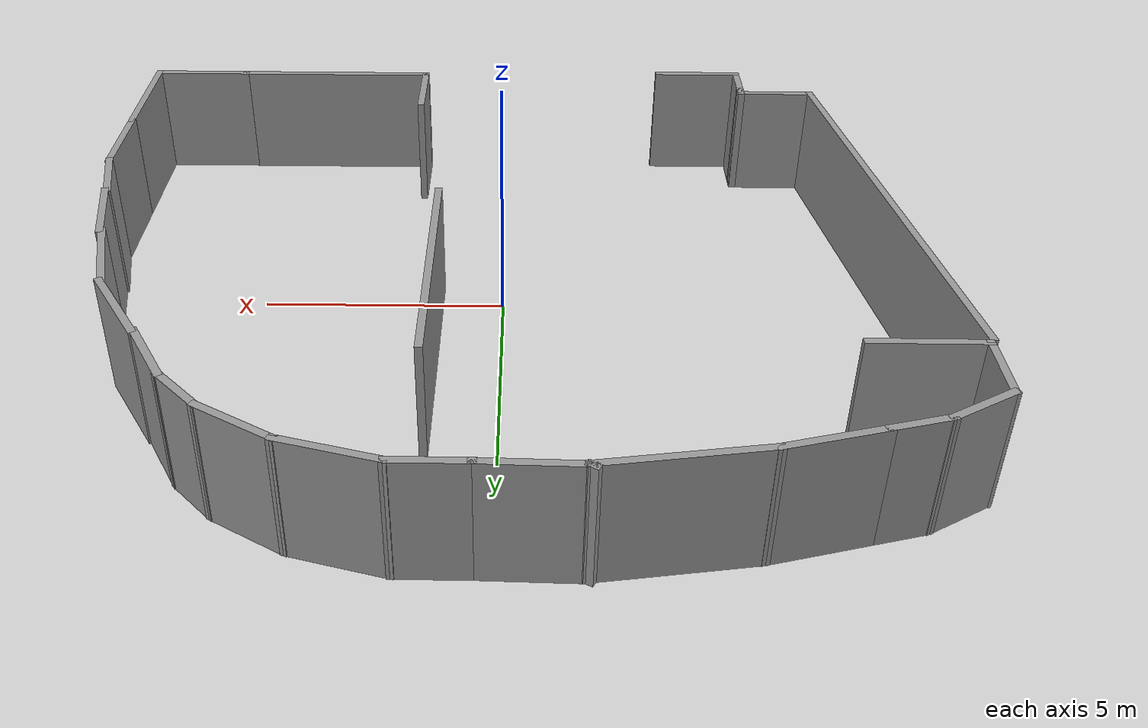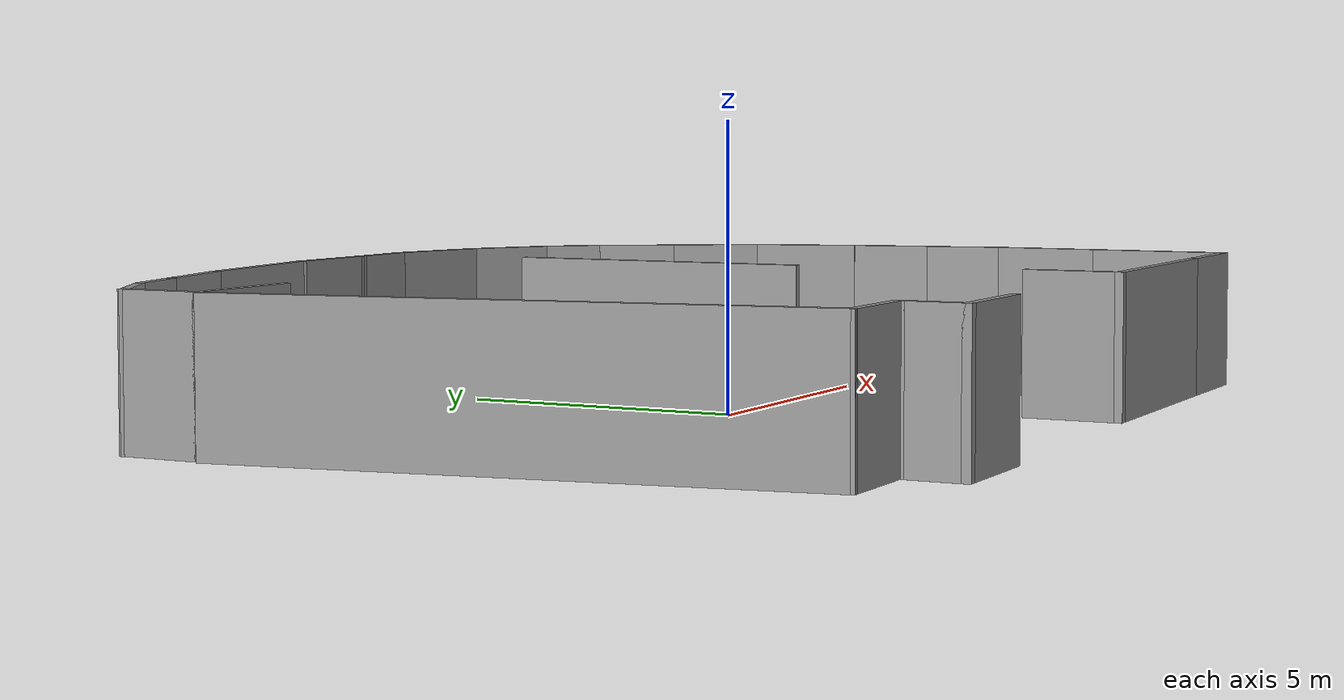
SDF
<?xml version='1.0'?>
<sdf version='1.6'>
  <model name='df'>
    <pose frame=''>-0.046206 0.709499 0 0 -0 0</pose>
    <link name='Wall_0'>
      <collision name='Wall_0_Collision'>
        <geometry>
          <box>
            <size>2 0.15 2.5</size>
          </box>
        </geometry>
        <pose frame=''>0 0 1.25 0 -0 0</pose>
      </collision>
      <visual name='Wall_0_Visual'>
        <pose frame=''>0 0 1.25 0 -0 0</pose>
        <geometry>
          <box>
            <size>2 0.15 2.5</size>
          </box>
        </geometry>
        <material>
          <script>
            <uri>file://media/materials/scripts/gazebo.material</uri>
            <name>Gazebo/Grey</name>
          </script>
          <ambient>1 1 1 1</ambient>
        </material>
        <meta>
          <layer>0</layer>
        </meta>
      </visual>
      <pose frame=''>-4.50458 -7.08787 0 0 -0 3.14159</pose>
    </link>
    <link name='Wall_1'>
      <collision name='Wall_1_Collision'>
        <geometry>
          <box>
            <size>1 0.15 2.5</size>
          </box>
        </geometry>
        <pose frame=''>0 0 1.25 0 -0 0</pose>
      </collision>
      <visual name='Wall_1_Visual'>
        <pose frame=''>0 0 1.25 0 -0 0</pose>
        <geometry>
          <box>
            <size>1 0.15 2.5</size>
          </box>
        </geometry>
        <material>
          <script>
            <uri>file://media/materials/scripts/gazebo.material</uri>
            <name>Gazebo/Grey</name>
          </script>
          <ambient>1 1 1 1</ambient>
        </material>
        <meta>
          <layer>0</layer>
        </meta>
      </visual>
      <pose frame=''>-5.42958 -6.66287 0 0 -0 1.5708</pose>
    </link>
    <link name='Wall_10'>
      <collision name='Wall_10_Collision'>
        <geometry>
          <box>
            <size>2.25 0.15 2.5</size>
          </box>
        </geometry>
        <pose frame=''>0 0 1.25 0 -0 0</pose>
      </collision>
      <visual name='Wall_10_Visual'>
        <pose frame=''>0 0 1.25 0 -0 0</pose>
        <geometry>
          <box>
            <size>2.25 0.15 2.5</size>
          </box>
        </geometry>
        <material>
          <script>
            <uri>file://media/materials/scripts/gazebo.material</uri>
            <name>Gazebo/Grey</name>
          </script>
          <ambient>1 1 1 1</ambient>
        </material>
        <meta>
          <layer>0</layer>
        </meta>
      </visual>
      <pose frame=''>-7.37436 3.77688 0 0 -0 3.14159</pose>
    </link>
    <link name='Wall_12'>
      <collision name='Wall_12_Collision'>
        <geometry>
          <box>
            <size>1.5 0.15 2.5</size>
          </box>
        </geometry>
        <pose frame=''>0 0 1.25 0 -0 0</pose>
      </collision>
      <visual name='Wall_12_Visual'>
        <pose frame=''>0 0 1.25 0 -0 0</pose>
        <geometry>
          <box>
            <size>1.5 0.15 2.5</size>
          </box>
        </geometry>
        <material>
          <script>
            <uri>file://media/materials/scripts/gazebo.material</uri>
            <name>Gazebo/Grey</name>
          </script>
          <ambient>1 1 1 1</ambient>
        </material>
        <meta>
          <layer>0</layer>
        </meta>
      </visual>
      <pose frame=''>-8.42436 4.45188 0 0 -0 1.5708</pose>
    </link>
    <link name='Wall_13'>
      <collision name='Wall_13_Collision'>
        <geometry>
          <box>
            <size>1.5 0.15 2.5</size>
          </box>
        </geometry>
        <pose frame=''>0 0 1.25 0 -0 0</pose>
      </collision>
      <visual name='Wall_13_Visual'>
        <pose frame=''>0 0 1.25 0 -0 0</pose>
        <geometry>
          <box>
            <size>1.5 0.15 2.5</size>
          </box>
        </geometry>
        <material>
          <script>
            <uri>file://media/materials/scripts/gazebo.material</uri>
            <name>Gazebo/Grey</name>
          </script>
          <ambient>1 1 1 1</ambient>
        </material>
        <meta>
          <layer>0</layer>
        </meta>
      </visual>
      <pose frame=''>-7.83979 5.46438 0 0 -0 0.523599</pose>
    </link>
    <link name='Wall_14'>
      <collision name='Wall_14_Collision'>
        <geometry>
          <box>
            <size>1.25 0.15 2.5</size>
          </box>
        </geometry>
        <pose frame=''>0 0 1.25 0 -0 0</pose>
      </collision>
      <visual name='Wall_14_Visual'>
        <pose frame=''>0 0 1.25 0 -0 0</pose>
        <geometry>
          <box>
            <size>1.25 0.15 2.5</size>
          </box>
        </geometry>
        <material>
          <script>
            <uri>file://media/materials/scripts/gazebo.material</uri>
            <name>Gazebo/Grey</name>
          </script>
          <ambient>1 1 1 1</ambient>
        </material>
        <meta>
          <layer>0</layer>
        </meta>
      </visual>
      <pose frame=''>-6.72397 5.94423 0 0 -0 0.261799</pose>
    </link>
    <link name='Wall_15'>
      <collision name='Wall_15_Collision'>
        <geometry>
          <box>
            <size>2 0.15 2.5</size>
          </box>
        </geometry>
        <pose frame=''>0 0 1.25 0 -0 0</pose>
      </collision>
      <visual name='Wall_15_Visual'>
        <pose frame=''>0 0 1.25 0 -0 0</pose>
        <geometry>
          <box>
            <size>2 0.15 2.5</size>
          </box>
        </geometry>
        <material>
          <script>
            <uri>file://media/materials/scripts/gazebo.material</uri>
            <name>Gazebo/Grey</name>
          </script>
          <ambient>1 1 1 1</ambient>
        </material>
        <meta>
          <layer>0</layer>
        </meta>
      </visual>
      <pose frame=''>-5.29923 6.32599 0 0 -0 0.261799</pose>
    </link>
    <link name='Wall_16'>
      <collision name='Wall_16_Collision'>
        <geometry>
          <box>
            <size>3.1251 0.15 2.5</size>
          </box>
        </geometry>
        <pose frame=''>0 0 1.25 0 -0 0</pose>
      </collision>
      <visual name='Wall_16_Visual'>
        <pose frame=''>0 0 1.25 0 -0 0</pose>
        <geometry>
          <box>
            <size>3.1251 0.15 2.5</size>
          </box>
        </geometry>
        <material>
          <script>
            <uri>file://media/materials/scripts/gazebo.material</uri>
            <name>Gazebo/Grey</name>
          </script>
          <ambient>1 1 1 1</ambient>
        </material>
        <meta>
          <layer>0</layer>
        </meta>
      </visual>
      <pose frame=''>-2.93493 6.78791 0 0 -0 0.150146</pose>
    </link>
    <link name='Wall_17'>
      <collision name='Wall_17_Collision'>
        <geometry>
          <box>
            <size>0.25 0.15 2.5</size>
          </box>
        </geometry>
        <pose frame=''>0 0 1.25 0 -0 0</pose>
      </collision>
      <visual name='Wall_17_Visual'>
        <pose frame=''>0 0 1.25 0 -0 0</pose>
        <geometry>
          <box>
            <size>0.25 0.15 2.5</size>
          </box>
        </geometry>
        <material>
          <script>
            <uri>file://media/materials/scripts/gazebo.material</uri>
            <name>Gazebo/Grey</name>
          </script>
          <ambient>1 1 1 1</ambient>
        </material>
        <meta>
          <layer>0</layer>
        </meta>
      </visual>
      <pose frame=''>-1.50742 7.03542 0 0 -0 2.61799</pose>
    </link>
    <link name='Wall_18'>
      <collision name='Wall_18_Collision'>
        <geometry>
          <box>
            <size>2.00044 0.15 2.5</size>
          </box>
        </geometry>
        <pose frame=''>0 0 1.25 0 -0 0</pose>
      </collision>
      <visual name='Wall_18_Visual'>
        <pose frame=''>0 0 1.25 0 -0 0</pose>
        <geometry>
          <box>
            <size>2.00044 0.15 2.5</size>
          </box>
        </geometry>
        <material>
          <script>
            <uri>file://media/materials/scripts/gazebo.material</uri>
            <name>Gazebo/Grey</name>
          </script>
          <ambient>1 1 1 1</ambient>
        </material>
        <meta>
          <layer>0</layer>
        </meta>
      </visual>
      <pose frame=''>-0.585263 6.99973 0 0 -0 -0.021864</pose>
    </link>
    <link name='Wall_19'>
      <collision name='Wall_19_Collision'>
        <geometry>
          <box>
            <size>1.5 0.15 2.5</size>
          </box>
        </geometry>
        <pose frame=''>0 0 1.25 0 -0 0</pose>
      </collision>
      <visual name='Wall_19_Visual'>
        <pose frame=''>0 0 1.25 0 -0 0</pose>
        <geometry>
          <box>
            <size>1.5 0.15 2.5</size>
          </box>
        </geometry>
        <material>
          <script>
            <uri>file://media/materials/scripts/gazebo.material</uri>
            <name>Gazebo/Grey</name>
          </script>
          <ambient>1 1 1 1</ambient>
        </material>
        <meta>
          <layer>0</layer>
        </meta>
      </visual>
      <pose frame=''>1.01474 6.9795 0 0 -0 0</pose>
    </link>
    <link name='Wall_2'>
      <collision name='Wall_2_Collision'>
        <geometry>
          <box>
            <size>0.25 0.15 2.5</size>
          </box>
        </geometry>
        <pose frame=''>0 0 1.25 0 -0 0</pose>
      </collision>
      <visual name='Wall_2_Visual'>
        <pose frame=''>0 0 1.25 0 -0 0</pose>
        <geometry>
          <box>
            <size>0.25 0.15 2.5</size>
          </box>
        </geometry>
        <material>
          <script>
            <uri>file://media/materials/scripts/gazebo.material</uri>
            <name>Gazebo/Grey</name>
          </script>
          <ambient>1 1 1 1</ambient>
        </material>
        <meta>
          <layer>0</layer>
        </meta>
      </visual>
      <pose frame=''>-5.42958 -6.18787 0 0 -0 1.5708</pose>
    </link>
    <link name='Wall_20'>
      <collision name='Wall_20_Collision'>
        <geometry>
          <box>
            <size>2 0.15 2.5</size>
          </box>
        </geometry>
        <pose frame=''>0 0 1.25 0 -0 0</pose>
      </collision>
      <visual name='Wall_20_Visual'>
        <pose frame=''>0 0 1.25 0 -0 0</pose>
        <geometry>
          <box>
            <size>2 0.15 2.5</size>
          </box>
        </geometry>
        <material>
          <script>
            <uri>file://media/materials/scripts/gazebo.material</uri>
            <name>Gazebo/Grey</name>
          </script>
          <ambient>1 1 1 1</ambient>
        </material>
        <meta>
          <layer>0</layer>
        </meta>
      </visual>
      <pose frame=''>2.58322 6.7401 0 0 -0 -0.261799</pose>
    </link>
    <link name='Wall_21'>
      <collision name='Wall_21_Collision'>
        <geometry>
          <box>
            <size>1.75 0.15 2.5</size>
          </box>
        </geometry>
        <pose frame=''>0 0 1.25 0 -0 0</pose>
      </collision>
      <visual name='Wall_21_Visual'>
        <pose frame=''>0 0 1.25 0 -0 0</pose>
        <geometry>
          <box>
            <size>1.75 0.15 2.5</size>
          </box>
        </geometry>
        <material>
          <script>
            <uri>file://media/materials/scripts/gazebo.material</uri>
            <name>Gazebo/Grey</name>
          </script>
          <ambient>1 1 1 1</ambient>
        </material>
        <meta>
          <layer>0</layer>
        </meta>
      </visual>
      <pose frame=''>4.16952 6.10069 0 0 -0 -0.523599</pose>
    </link>
    <link name='Wall_22'>
      <collision name='Wall_22_Collision'>
        <geometry>
          <box>
            <size>1.25 0.15 2.5</size>
          </box>
        </geometry>
        <pose frame=''>0 0 1.25 0 -0 0</pose>
      </collision>
      <visual name='Wall_22_Visual'>
        <pose frame=''>0 0 1.25 0 -0 0</pose>
        <geometry>
          <box>
            <size>1.25 0.15 2.5</size>
          </box>
        </geometry>
        <material>
          <script>
            <uri>file://media/materials/scripts/gazebo.material</uri>
            <name>Gazebo/Grey</name>
          </script>
          <ambient>1 1 1 1</ambient>
        </material>
        <meta>
          <layer>0</layer>
        </meta>
      </visual>
      <pose frame=''>5.25125 5.31178 0 0 -0 -0.785398</pose>
    </link>
    <link name='Wall_23'>
      <collision name='Wall_23_Collision'>
        <geometry>
          <box>
            <size>1.55534 0.15 2.5</size>
          </box>
        </geometry>
        <pose frame=''>0 0 1.25 0 -0 0</pose>
      </collision>
      <visual name='Wall_23_Visual'>
        <pose frame=''>0 0 1.25 0 -0 0</pose>
        <geometry>
          <box>
            <size>1.55534 0.15 2.5</size>
          </box>
        </geometry>
        <material>
          <script>
            <uri>file://media/materials/scripts/gazebo.material</uri>
            <name>Gazebo/Grey</name>
          </script>
          <ambient>1 1 1 1</ambient>
        </material>
        <meta>
          <layer>0</layer>
        </meta>
      </visual>
      <pose frame=''>5.99789 4.31808 0 0 -0 -1.03666</pose>
    </link>
    <link name='Wall_24'>
      <collision name='Wall_24_Collision'>
        <geometry>
          <box>
            <size>2.00762 0.15 2.5</size>
          </box>
        </geometry>
        <pose frame=''>0 0 1.25 0 -0 0</pose>
      </collision>
      <visual name='Wall_24_Visual'>
        <pose frame=''>0 0 1.25 0 -0 0</pose>
        <geometry>
          <box>
            <size>2.00762 0.15 2.5</size>
          </box>
        </geometry>
        <material>
          <script>
            <uri>file://media/materials/scripts/gazebo.material</uri>
            <name>Gazebo/Grey</name>
          </script>
          <ambient>1 1 1 1</ambient>
        </material>
        <meta>
          <layer>0</layer>
        </meta>
      </visual>
      <pose frame=''>6.89902 2.93244 0 0 -0 -0.998568</pose>
    </link>
    <link name='Wall_25'>
      <collision name='Wall_25_Collision'>
        <geometry>
          <box>
            <size>1.96095 0.15 2.5</size>
          </box>
        </geometry>
        <pose frame=''>0 0 1.25 0 -0 0</pose>
      </collision>
      <visual name='Wall_25_Visual'>
        <pose frame=''>0 0 1.25 0 -0 0</pose>
        <geometry>
          <box>
            <size>1.96095 0.15 2.5</size>
          </box>
        </geometry>
        <material>
          <script>
            <uri>file://media/materials/scripts/gazebo.material</uri>
            <name>Gazebo/Grey</name>
          </script>
          <ambient>1 1 1 1</ambient>
        </material>
        <meta>
          <layer>0</layer>
        </meta>
      </visual>
      <pose frame=''>7.60093 1.27834 0 0 -0 -1.30322</pose>
    </link>
    <link name='Wall_26'>
      <collision name='Wall_26_Collision'>
        <geometry>
          <box>
            <size>1.77056 0.15 2.5</size>
          </box>
        </geometry>
        <pose frame=''>0 0 1.25 0 -0 0</pose>
      </collision>
      <visual name='Wall_26_Visual'>
        <pose frame=''>0 0 1.25 0 -0 0</pose>
        <geometry>
          <box>
            <size>1.77056 0.15 2.5</size>
          </box>
        </geometry>
        <material>
          <script>
            <uri>file://media/materials/scripts/gazebo.material</uri>
            <name>Gazebo/Grey</name>
          </script>
          <ambient>1 1 1 1</ambient>
        </material>
        <meta>
          <layer>0</layer>
        </meta>
      </visual>
      <pose frame=''>8.04739 -0.387885 0 0 -0 -1.36371</pose>
    </link>
    <link name='Wall_27'>
      <collision name='Wall_27_Collision'>
        <geometry>
          <box>
            <size>1.4901 0.15 2.5</size>
          </box>
        </geometry>
        <pose frame=''>0 0 1.25 0 -0 0</pose>
      </collision>
      <visual name='Wall_27_Visual'>
        <pose frame=''>0 0 1.25 0 -0 0</pose>
        <geometry>
          <box>
            <size>1.4901 0.15 2.5</size>
          </box>
        </geometry>
        <material>
          <script>
            <uri>file://media/materials/scripts/gazebo.material</uri>
            <name>Gazebo/Grey</name>
          </script>
          <ambient>1 1 1 1</ambient>
        </material>
        <meta>
          <layer>0</layer>
        </meta>
      </visual>
      <pose frame=''>8.32801 -1.83285 0 0 -0 -1.33816</pose>
    </link>
    <link name='Wall_28'>
      <collision name='Wall_28_Collision'>
        <geometry>
          <box>
            <size>2 0.15 2.5</size>
          </box>
        </geometry>
        <pose frame=''>0 0 1.25 0 -0 0</pose>
      </collision>
      <visual name='Wall_28_Visual'>
        <pose frame=''>0 0 1.25 0 -0 0</pose>
        <geometry>
          <box>
            <size>2 0.15 2.5</size>
          </box>
        </geometry>
        <material>
          <script>
            <uri>file://media/materials/scripts/gazebo.material</uri>
            <name>Gazebo/Grey</name>
          </script>
          <ambient>1 1 1 1</ambient>
        </material>
        <meta>
          <layer>0</layer>
        </meta>
      </visual>
      <pose frame=''>8.48249 -3.40985 0 0 -0 -1.5708</pose>
    </link>
    <link name='Wall_29'>
      <collision name='Wall_29_Collision'>
        <geometry>
          <box>
            <size>2.75 0.15 2.5</size>
          </box>
        </geometry>
        <pose frame=''>0 0 1.25 0 -0 0</pose>
      </collision>
      <visual name='Wall_29_Visual'>
        <pose frame=''>0 0 1.25 0 -0 0</pose>
        <geometry>
          <box>
            <size>2.75 0.15 2.5</size>
          </box>
        </geometry>
        <material>
          <script>
            <uri>file://media/materials/scripts/gazebo.material</uri>
            <name>Gazebo/Grey</name>
          </script>
          <ambient>1 1 1 1</ambient>
        </material>
        <meta>
          <layer>0</layer>
        </meta>
      </visual>
      <pose frame=''>8.48249 -5.63485 0 0 -0 -1.5708</pose>
    </link>
    <link name='Wall_3'>
      <collision name='Wall_3_Collision'>
        <geometry>
          <box>
            <size>0.25 0.15 2.5</size>
          </box>
        </geometry>
        <pose frame=''>0 0 1.25 0 -0 0</pose>
      </collision>
      <visual name='Wall_3_Visual'>
        <pose frame=''>0 0 1.25 0 -0 0</pose>
        <geometry>
          <box>
            <size>0.25 0.15 2.5</size>
          </box>
        </geometry>
        <material>
          <script>
            <uri>file://media/materials/scripts/gazebo.material</uri>
            <name>Gazebo/Grey</name>
          </script>
          <ambient>1 1 1 1</ambient>
        </material>
        <meta>
          <layer>0</layer>
        </meta>
      </visual>
      <pose frame=''>-5.42958 -6.08787 0 0 -0 1.5708</pose>
    </link>
    <link name='Wall_30'>
      <collision name='Wall_30_Collision'>
        <geometry>
          <box>
            <size>2.25 0.15 2.5</size>
          </box>
        </geometry>
        <pose frame=''>0 0 1.25 0 -0 0</pose>
      </collision>
      <visual name='Wall_30_Visual'>
        <pose frame=''>0 0 1.25 0 -0 0</pose>
        <geometry>
          <box>
            <size>2.25 0.15 2.5</size>
          </box>
        </geometry>
        <material>
          <script>
            <uri>file://media/materials/scripts/gazebo.material</uri>
            <name>Gazebo/Grey</name>
          </script>
          <ambient>1 1 1 1</ambient>
        </material>
        <meta>
          <layer>0</layer>
        </meta>
      </visual>
      <pose frame=''>7.43249 -6.93485 0 0 -0 3.14159</pose>
    </link>
    <link name='Wall_31'>
      <collision name='Wall_31_Collision'>
        <geometry>
          <box>
            <size>4.5 0.15 2.5</size>
          </box>
        </geometry>
        <pose frame=''>0 0 1.25 0 -0 0</pose>
      </collision>
      <visual name='Wall_31_Visual'>
        <pose frame=''>0 0 1.25 0 -0 0</pose>
        <geometry>
          <box>
            <size>4.5 0.15 2.5</size>
          </box>
        </geometry>
        <material>
          <script>
            <uri>file://media/materials/scripts/gazebo.material</uri>
            <name>Gazebo/Grey</name>
          </script>
          <ambient>1 1 1 1</ambient>
        </material>
        <meta>
          <layer>0</layer>
        </meta>
      </visual>
      <pose frame=''>4.20749 -6.93485 0 0 -0 3.14159</pose>
    </link>
    <link name='Wall_32'>
      <collision name='Wall_32_Collision'>
        <geometry>
          <box>
            <size>1.75 0.15 2.5</size>
          </box>
        </geometry>
        <pose frame=''>0 0 1.25 0 -0 0</pose>
      </collision>
      <visual name='Wall_32_Visual'>
        <pose frame=''>0 0 1.25 0 -0 0</pose>
        <geometry>
          <box>
            <size>1.75 0.15 2.5</size>
          </box>
        </geometry>
        <material>
          <script>
            <uri>file://media/materials/scripts/gazebo.material</uri>
            <name>Gazebo/Grey</name>
          </script>
          <ambient>1 1 1 1</ambient>
        </material>
        <meta>
          <layer>0</layer>
        </meta>
      </visual>
      <pose frame=''>2.03249 -6.13485 0 0 -0 1.5708</pose>
    </link>
    <link name='Wall_34'>
      <collision name='Wall_34_Collision'>
        <geometry>
          <box>
            <size>5.5 0.15 2.5</size>
          </box>
        </geometry>
        <pose frame=''>0 0 1.25 0 -0 0</pose>
      </collision>
      <visual name='Wall_34_Visual'>
        <pose frame=''>0 0 1.25 0 -0 0</pose>
        <geometry>
          <box>
            <size>5.5 0.15 2.5</size>
          </box>
        </geometry>
        <material>
          <script>
            <uri>file://media/materials/scripts/gazebo.material</uri>
            <name>Gazebo/Grey</name>
          </script>
          <ambient>1 1 1 1</ambient>
        </material>
        <meta>
          <layer>0</layer>
        </meta>
      </visual>
      <pose frame=''>1.37341 1.36404 0 0 -0 -1.5708</pose>
    </link>
    <link name='Wall_4'>
      <collision name='Wall_4_Collision'>
        <geometry>
          <box>
            <size>1.75 0.15 2.5</size>
          </box>
        </geometry>
        <pose frame=''>0 0 1.25 0 -0 0</pose>
      </collision>
      <visual name='Wall_4_Visual'>
        <pose frame=''>0 0 1.25 0 -0 0</pose>
        <geometry>
          <box>
            <size>1.75 0.15 2.5</size>
          </box>
        </geometry>
        <material>
          <script>
            <uri>file://media/materials/scripts/gazebo.material</uri>
            <name>Gazebo/Grey</name>
          </script>
          <ambient>1 1 1 1</ambient>
        </material>
        <meta>
          <layer>0</layer>
        </meta>
      </visual>
      <pose frame=''>-6.22958 -6.03787 0 0 -0 3.14159</pose>
    </link>
    <link name='Wall_5'>
      <collision name='Wall_5_Collision'>
        <geometry>
          <box>
            <size>9.95509 0.15 2.5</size>
          </box>
        </geometry>
        <pose frame=''>0 0 1.25 0 -0 0</pose>
      </collision>
      <visual name='Wall_5_Visual'>
        <pose frame=''>0 0 1.25 0 -0 0</pose>
        <geometry>
          <box>
            <size>9.95509 0.15 2.5</size>
          </box>
        </geometry>
        <material>
          <script>
            <uri>file://media/materials/scripts/gazebo.material</uri>
            <name>Gazebo/Grey</name>
          </script>
          <ambient>1 1 1 1</ambient>
        </material>
        <meta>
          <layer>0</layer>
        </meta>
      </visual>
      <pose frame=''>-7.75851 -1.18982 0 0 -0 1.72003</pose>
    </link>
    <static>1</static>
  </model>
</sdf>
